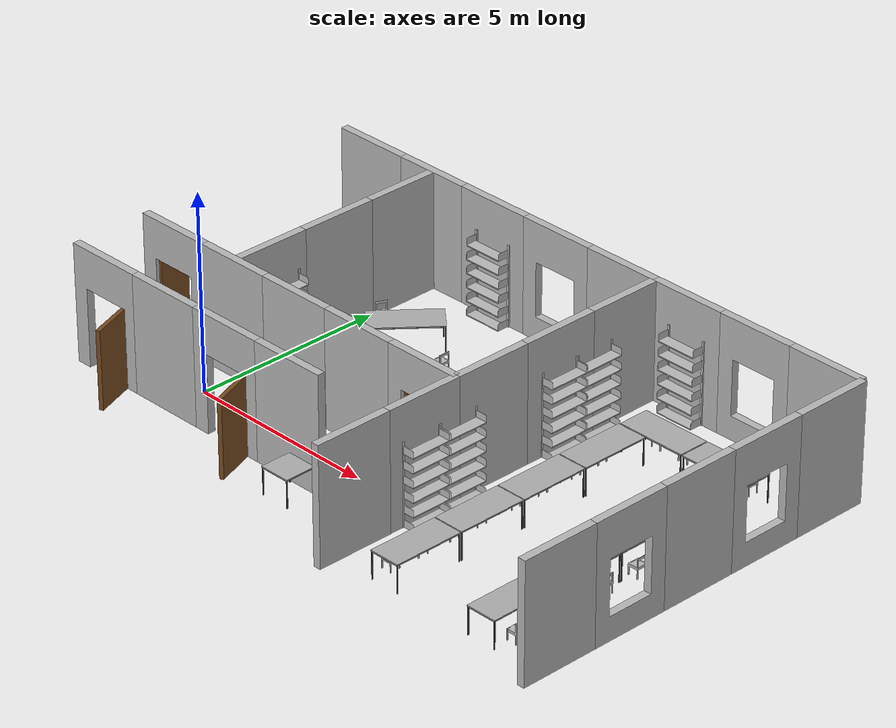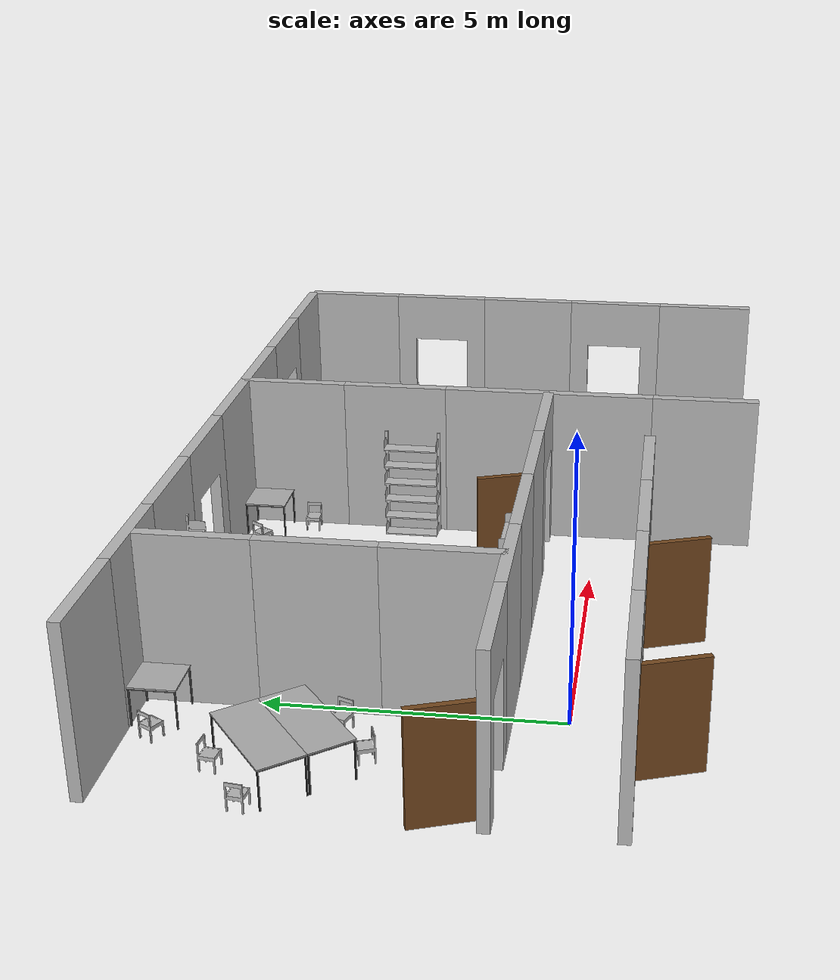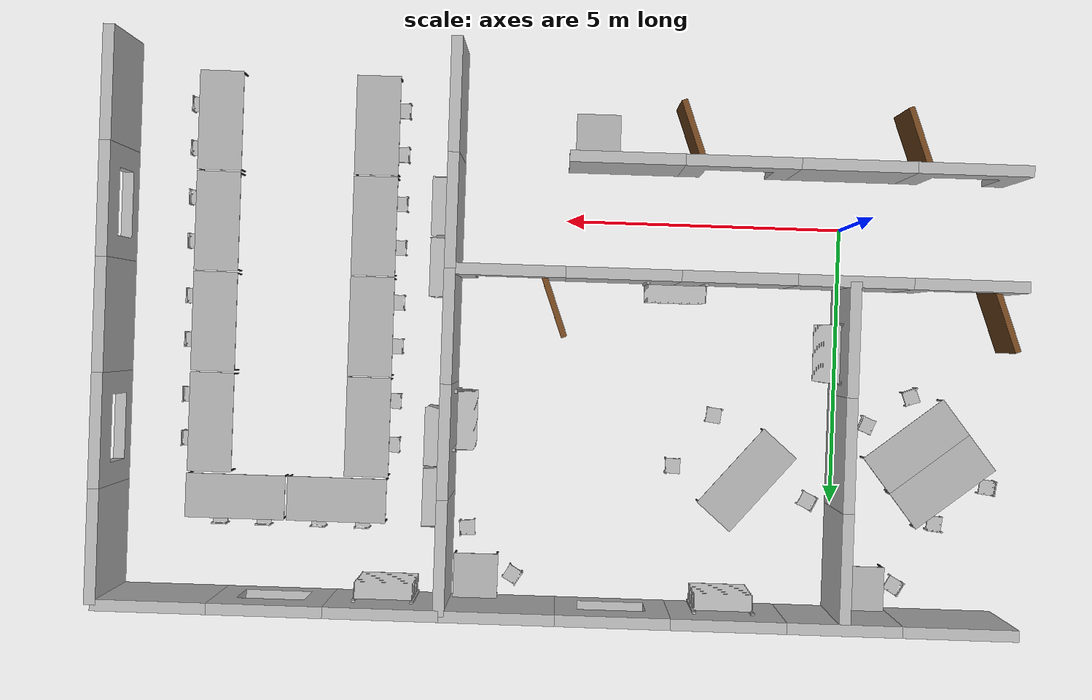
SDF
<sdf version="1.6">
 <world name="office_sim">
  <model name="Shelves.028">
   <static>1</static>
   <link name="Shelves">
    <collision name="collision">
     <geometry><mesh><uri>model://Shelves/Shelves.dae</uri></mesh></geometry>
    </collision>
    <visual name="vis">
     <cast_shadows>0</cast_shadows>
     <geometry><mesh><uri>model://Shelves/Shelves.dae</uri></mesh></geometry>
    </visual>
   </link>
   <pose>8.03156 6.86493 0 0 -0 0</pose>
  </model>
  <model name="Shelves.027">
   <static>1</static>
   <link name="Shelves">
    <collision name="collision">
     <geometry><mesh><uri>model://Shelves/Shelves.dae</uri></mesh></geometry>
    </collision>
    <visual name="vis">
     <cast_shadows>0</cast_shadows>
     <geometry><mesh><uri>model://Shelves/Shelves.dae</uri></mesh></geometry>
    </visual>
   </link>
   <pose>2.03156 6.86493 0 0 -0 0</pose>
  </model>
  <model name="Shelves.026">
   <static>1</static>
   <link name="Shelves">
    <collision name="collision">
     <geometry><mesh><uri>model://Shelves/Shelves.dae</uri></mesh></geometry>
    </collision>
    <visual name="vis">
     <cast_shadows>0</cast_shadows>
     <geometry><mesh><uri>model://Shelves/Shelves.dae</uri></mesh></geometry>
    </visual>
   </link>
   <pose>3.03156 1.14421 0 0 -0 -3.14159</pose>
  </model>
  <model name="Shelves.015">
   <static>1</static>
   <link name="Shelves">
    <collision name="collision">
     <geometry><mesh><uri>model://Shelves/Shelves.dae</uri></mesh></geometry>
    </collision>
    <visual name="vis">
     <cast_shadows>0</cast_shadows>
     <geometry><mesh><uri>model://Shelves/Shelves.dae</uri></mesh></geometry>
    </visual>
   </link>
   <pose>6.83156 3.65816 0 0 -0 -1.5708</pose>
  </model>
  <model name="Shelves.005">
   <static>1</static>
   <link name="Shelves">
    <collision name="collision">
     <geometry><mesh><uri>model://Shelves/Shelves.dae</uri></mesh></geometry>
    </collision>
    <visual name="vis">
     <cast_shadows>0</cast_shadows>
     <geometry><mesh><uri>model://Shelves/Shelves.dae</uri></mesh></geometry>
    </visual>
   </link>
   <pose>0.103355 2.25816 0 0 -0 1.5708</pose>
  </model>
  <model name="Shelves.004">
   <static>1</static>
   <link name="Shelves">
    <collision name="collision">
     <geometry><mesh><uri>model://Shelves/Shelves.dae</uri></mesh></geometry>
    </collision>
    <visual name="vis">
     <cast_shadows>0</cast_shadows>
     <geometry><mesh><uri>model://Shelves/Shelves.dae</uri></mesh></geometry>
    </visual>
   </link>
   <pose>7.10335 5.0286 0 0 -0 1.5708</pose>
  </model>
  <model name="Shelves.003">
   <static>1</static>
   <link name="Shelves">
    <collision name="collision">
     <geometry><mesh><uri>model://Shelves/Shelves.dae</uri></mesh></geometry>
    </collision>
    <visual name="vis">
     <cast_shadows>0</cast_shadows>
     <geometry><mesh><uri>model://Shelves/Shelves.dae</uri></mesh></geometry>
    </visual>
   </link>
   <pose>7.10335 3.96468 0 0 -0 1.5708</pose>
  </model>
  <model name="Shelves.002">
   <static>1</static>
   <link name="Shelves">
    <collision name="collision">
     <geometry><mesh><uri>model://Shelves/Shelves.dae</uri></mesh></geometry>
    </collision>
    <visual name="vis">
     <cast_shadows>0</cast_shadows>
     <geometry><mesh><uri>model://Shelves/Shelves.dae</uri></mesh></geometry>
    </visual>
   </link>
   <pose>7.10335 0.964682 0 0 -0 1.5708</pose>
  </model>
  <model name="Shelves.001">
   <static>1</static>
   <link name="Shelves">
    <collision name="collision">
     <geometry><mesh><uri>model://Shelves/Shelves.dae</uri></mesh></geometry>
    </collision>
    <visual name="vis">
     <cast_shadows>0</cast_shadows>
     <geometry><mesh><uri>model://Shelves/Shelves.dae</uri></mesh></geometry>
    </visual>
   </link>
   <pose>7.10335 -0.11143 0 0 -0 1.5708</pose>
  </model>
  <model name="DoorOpen.011">
   <static>1</static>
   <link name="DoorOpen">
    <collision name="collision">
     <geometry><mesh><uri>model://DoorOpen/DoorOpen.dae</uri></mesh></geometry>
    </collision>
    <visual name="vis">
     <cast_shadows>0</cast_shadows>
     <geometry><mesh><uri>model://DoorOpen/DoorOpen.dae</uri></mesh></geometry>
    </visual>
   </link>
   <pose>-2 1 0 0 -0 0</pose>
  </model>
  <model name="DoorOpen.010">
   <static>1</static>
   <link name="DoorOpen">
    <collision name="collision">
     <geometry><mesh><uri>model://DoorOpen/DoorOpen.dae</uri></mesh></geometry>
    </collision>
    <visual name="vis">
     <cast_shadows>0</cast_shadows>
     <geometry><mesh><uri>model://DoorOpen/DoorOpen.dae</uri></mesh></geometry>
    </visual>
   </link>
   <pose>6 1 0 0 -0 0</pose>
  </model>
  <model name="DoorOpen.009">
   <static>1</static>
   <link name="DoorOpen">
    <collision name="collision">
     <geometry><mesh><uri>model://DoorOpen/DoorOpen.dae</uri></mesh></geometry>
    </collision>
    <visual name="vis">
     <cast_shadows>0</cast_shadows>
     <geometry><mesh><uri>model://DoorOpen/DoorOpen.dae</uri></mesh></geometry>
    </visual>
   </link>
   <pose>-2 -1 0 0 -0 3.14159</pose>
  </model>
  <model name="DoorOpen.006">
   <static>1</static>
   <link name="DoorOpen">
    <collision name="collision">
     <geometry><mesh><uri>model://DoorOpen/DoorOpen.dae</uri></mesh></geometry>
    </collision>
    <visual name="vis">
     <cast_shadows>0</cast_shadows>
     <geometry><mesh><uri>model://DoorOpen/DoorOpen.dae</uri></mesh></geometry>
    </visual>
   </link>
   <pose>2 -1 0 0 -0 3.14159</pose>
  </model>
  <model name="chair.077">
   <static>1</static>
   <link name="Chair">
    <collision name="collision"><geometry><mesh><uri>model://Chair/Chair.dae</uri></mesh></geometry></collision>
    <visual name="vis">
     <cast_shadows>0</cast_shadows>
     <geometry><mesh><uri>model://Chair/Chair.dae</uri></mesh></geometry>
    </visual>
   </link>
   <pose>-1.17679 6.46121 0 0 -0 1.05807</pose>
  </model>
  <model name="chair.065">
   <static>1</static>
   <link name="Chair">
    <collision name="collision"><geometry><mesh><uri>model://Chair/Chair.dae</uri></mesh></geometry></collision>
    <visual name="vis">
     <cast_shadows>0</cast_shadows>
     <geometry><mesh><uri>model://Chair/Chair.dae</uri></mesh></geometry>
    </visual>
   </link>
   <pose>-2.8286 4.61296 0 0 -0 1.44364</pose>
  </model>
  <model name="chair.064">
   <static>1</static>
   <link name="Chair">
    <collision name="collision"><geometry><mesh><uri>model://Chair/Chair.dae</uri></mesh></geometry></collision>
    <visual name="vis">
     <cast_shadows>0</cast_shadows>
     <geometry><mesh><uri>model://Chair/Chair.dae</uri></mesh></geometry>
    </visual>
   </link>
   <pose>-1.89432 5.30636 0 0 0 -0.120868</pose>
  </model>
  <model name="chair.063">
   <static>1</static>
   <link name="Chair">
    <collision name="collision"><geometry><mesh><uri>model://Chair/Chair.dae</uri></mesh></geometry></collision>
    <visual name="vis">
     <cast_shadows>0</cast_shadows>
     <geometry><mesh><uri>model://Chair/Chair.dae</uri></mesh></geometry>
    </visual>
   </link>
   <pose>-1.39274 3.00957 0 0 0 -2.79306</pose>
  </model>
  <model name="chair.062">
   <static>1</static>
   <link name="Chair">
    <collision name="collision"><geometry><mesh><uri>model://Chair/Chair.dae</uri></mesh></geometry></collision>
    <visual name="vis">
     <cast_shadows>0</cast_shadows>
     <geometry><mesh><uri>model://Chair/Chair.dae</uri></mesh></geometry>
    </visual>
   </link>
   <pose>-0.597138 3.55061 0 0 0 -1.94892</pose>
  </model>
  <model name="chair.061">
   <static>1</static>
   <link name="Chair">
    <collision name="collision"><geometry><mesh><uri>model://Chair/Chair.dae</uri></mesh></geometry></collision>
    <visual name="vis">
     <cast_shadows>0</cast_shadows>
     <geometry><mesh><uri>model://Chair/Chair.dae</uri></mesh></geometry>
    </visual>
   </link>
   <pose>5.78957 6.49669 0 0 -0 1.02957</pose>
  </model>
  <model name="chair.060">
   <static>1</static>
   <link name="Chair">
    <collision name="collision"><geometry><mesh><uri>model://Chair/Chair.dae</uri></mesh></geometry></collision>
    <visual name="vis">
     <cast_shadows>0</cast_shadows>
     <geometry><mesh><uri>model://Chair/Chair.dae</uri></mesh></geometry>
    </visual>
   </link>
   <pose>6.63843 5.66354 0 0 0 -1.49217</pose>
  </model>
  <model name="chair.059">
   <static>1</static>
   <link name="Chair">
    <collision name="collision"><geometry><mesh><uri>model://Chair/Chair.dae</uri></mesh></geometry></collision>
    <visual name="vis">
     <cast_shadows>0</cast_shadows>
     <geometry><mesh><uri>model://Chair/Chair.dae</uri></mesh></geometry>
    </visual>
   </link>
   <pose>2.20546 3.46278 0 0 -0 3.01177</pose>
  </model>
  <model name="chair.058">
   <static>1</static>
   <link name="Chair">
    <collision name="collision"><geometry><mesh><uri>model://Chair/Chair.dae</uri></mesh></geometry></collision>
    <visual name="vis">
     <cast_shadows>0</cast_shadows>
     <geometry><mesh><uri>model://Chair/Chair.dae</uri></mesh></geometry>
    </visual>
   </link>
   <pose>2.92595 4.41251 0 0 0 -1.59587</pose>
  </model>
  <model name="chair.057">
   <static>1</static>
   <link name="Chair">
    <collision name="collision"><geometry><mesh><uri>model://Chair/Chair.dae</uri></mesh></geometry></collision>
    <visual name="vis">
     <cast_shadows>0</cast_shadows>
     <geometry><mesh><uri>model://Chair/Chair.dae</uri></mesh></geometry>
    </visual>
   </link>
   <pose>0.447908 4.96925 0 0 -0 1.10939</pose>
  </model>
  <model name="chair.036">
   <static>1</static>
   <link name="Chair">
    <collision name="collision"><geometry><mesh><uri>model://Chair/Chair.dae</uri></mesh></geometry></collision>
    <visual name="vis">
     <cast_shadows>0</cast_shadows>
     <geometry><mesh><uri>model://Chair/Chair.dae</uri></mesh></geometry>
    </visual>
   </link>
   <pose>8.06125 -1.10181 0 0 -0 1.5708</pose>
  </model>
  <model name="chair.035">
   <static>1</static>
   <link name="Chair">
    <collision name="collision"><geometry><mesh><uri>model://Chair/Chair.dae</uri></mesh></geometry></collision>
    <visual name="vis">
     <cast_shadows>0</cast_shadows>
     <geometry><mesh><uri>model://Chair/Chair.dae</uri></mesh></geometry>
    </visual>
   </link>
   <pose>8.06125 -1.90181 0 0 -0 1.5708</pose>
  </model>
  <model name="chair.034">
   <static>1</static>
   <link name="Chair">
    <collision name="collision"><geometry><mesh><uri>model://Chair/Chair.dae</uri></mesh></geometry></collision>
    <visual name="vis">
     <cast_shadows>0</cast_shadows>
     <geometry><mesh><uri>model://Chair/Chair.dae</uri></mesh></geometry>
    </visual>
   </link>
   <pose>11.7612 -1.10181 0 0 0 -1.5708</pose>
  </model>
  <model name="chair.033">
   <static>1</static>
   <link name="Chair">
    <collision name="collision"><geometry><mesh><uri>model://Chair/Chair.dae</uri></mesh></geometry></collision>
    <visual name="vis">
     <cast_shadows>0</cast_shadows>
     <geometry><mesh><uri>model://Chair/Chair.dae</uri></mesh></geometry>
    </visual>
   </link>
   <pose>11.7612 -1.90181 0 0 0 -1.5708</pose>
  </model>
  <model name="chair.032">
   <static>1</static>
   <link name="Chair">
    <collision name="collision"><geometry><mesh><uri>model://Chair/Chair.dae</uri></mesh></geometry></collision>
    <visual name="vis">
     <cast_shadows>0</cast_shadows>
     <geometry><mesh><uri>model://Chair/Chair.dae</uri></mesh></geometry>
    </visual>
   </link>
   <pose>11.7612 -0.20181 0 0 0 -1.5708</pose>
  </model>
  <model name="chair.031">
   <static>1</static>
   <link name="Chair">
    <collision name="collision"><geometry><mesh><uri>model://Chair/Chair.dae</uri></mesh></geometry></collision>
    <visual name="vis">
     <cast_shadows>0</cast_shadows>
     <geometry><mesh><uri>model://Chair/Chair.dae</uri></mesh></geometry>
    </visual>
   </link>
   <pose>11.7612 0.59819 0 0 0 -1.5708</pose>
  </model>
  <model name="chair.030">
   <static>1</static>
   <link name="Chair">
    <collision name="collision"><geometry><mesh><uri>model://Chair/Chair.dae</uri></mesh></geometry></collision>
    <visual name="vis">
     <cast_shadows>0</cast_shadows>
     <geometry><mesh><uri>model://Chair/Chair.dae</uri></mesh></geometry>
    </visual>
   </link>
   <pose>11.7612 2.39819 0 0 0 -1.5708</pose>
  </model>
  <model name="chair.029">
   <static>1</static>
   <link name="Chair">
    <collision name="collision"><geometry><mesh><uri>model://Chair/Chair.dae</uri></mesh></geometry></collision>
    <visual name="vis">
     <cast_shadows>0</cast_shadows>
     <geometry><mesh><uri>model://Chair/Chair.dae</uri></mesh></geometry>
    </visual>
   </link>
   <pose>11.7612 1.59819 0 0 0 -1.5708</pose>
  </model>
  <model name="chair.028">
   <static>1</static>
   <link name="Chair">
    <collision name="collision"><geometry><mesh><uri>model://Chair/Chair.dae</uri></mesh></geometry></collision>
    <visual name="vis">
     <cast_shadows>0</cast_shadows>
     <geometry><mesh><uri>model://Chair/Chair.dae</uri></mesh></geometry>
    </visual>
   </link>
   <pose>11.7612 3.39819 0 0 0 -1.5708</pose>
  </model>
  <model name="chair.027">
   <static>1</static>
   <link name="Chair">
    <collision name="collision"><geometry><mesh><uri>model://Chair/Chair.dae</uri></mesh></geometry></collision>
    <visual name="vis">
     <cast_shadows>0</cast_shadows>
     <geometry><mesh><uri>model://Chair/Chair.dae</uri></mesh></geometry>
    </visual>
   </link>
   <pose>11.7612 4.19819 0 0 0 -1.5708</pose>
  </model>
  <model name="chair.026">
   <static>1</static>
   <link name="Chair">
    <collision name="collision"><geometry><mesh><uri>model://Chair/Chair.dae</uri></mesh></geometry></collision>
    <visual name="vis">
     <cast_shadows>0</cast_shadows>
     <geometry><mesh><uri>model://Chair/Chair.dae</uri></mesh></geometry>
    </visual>
   </link>
   <pose>8.06125 -0.20181 0 0 -0 1.5708</pose>
  </model>
  <model name="chair.025">
   <static>1</static>
   <link name="Chair">
    <collision name="collision"><geometry><mesh><uri>model://Chair/Chair.dae</uri></mesh></geometry></collision>
    <visual name="vis">
     <cast_shadows>0</cast_shadows>
     <geometry><mesh><uri>model://Chair/Chair.dae</uri></mesh></geometry>
    </visual>
   </link>
   <pose>8.06125 0.59819 0 0 -0 1.5708</pose>
  </model>
  <model name="chair.024">
   <static>1</static>
   <link name="Chair">
    <collision name="collision"><geometry><mesh><uri>model://Chair/Chair.dae</uri></mesh></geometry></collision>
    <visual name="vis">
     <cast_shadows>0</cast_shadows>
     <geometry><mesh><uri>model://Chair/Chair.dae</uri></mesh></geometry>
    </visual>
   </link>
   <pose>8.06125 2.39819 0 0 -0 1.5708</pose>
  </model>
  <model name="chair.023">
   <static>1</static>
   <link name="Chair">
    <collision name="collision"><geometry><mesh><uri>model://Chair/Chair.dae</uri></mesh></geometry></collision>
    <visual name="vis">
     <cast_shadows>0</cast_shadows>
     <geometry><mesh><uri>model://Chair/Chair.dae</uri></mesh></geometry>
    </visual>
   </link>
   <pose>8.06125 1.59819 0 0 -0 1.5708</pose>
  </model>
  <model name="chair.022">
   <static>1</static>
   <link name="Chair">
    <collision name="collision"><geometry><mesh><uri>model://Chair/Chair.dae</uri></mesh></geometry></collision>
    <visual name="vis">
     <cast_shadows>0</cast_shadows>
     <geometry><mesh><uri>model://Chair/Chair.dae</uri></mesh></geometry>
    </visual>
   </link>
   <pose>8.06125 3.39819 0 0 -0 1.5708</pose>
  </model>
  <model name="chair.021">
   <static>1</static>
   <link name="Chair">
    <collision name="collision"><geometry><mesh><uri>model://Chair/Chair.dae</uri></mesh></geometry></collision>
    <visual name="vis">
     <cast_shadows>0</cast_shadows>
     <geometry><mesh><uri>model://Chair/Chair.dae</uri></mesh></geometry>
    </visual>
   </link>
   <pose>8.06125 4.19819 0 0 -0 1.5708</pose>
  </model>
  <model name="chair.020">
   <static>1</static>
   <link name="Chair">
    <collision name="collision"><geometry><mesh><uri>model://Chair/Chair.dae</uri></mesh></geometry></collision>
    <visual name="vis">
     <cast_shadows>0</cast_shadows>
     <geometry><mesh><uri>model://Chair/Chair.dae</uri></mesh></geometry>
    </visual>
   </link>
   <pose>11.1612 5.59819 0 0 -0 0</pose>
  </model>
  <model name="chair.019">
   <static>1</static>
   <link name="Chair">
    <collision name="collision"><geometry><mesh><uri>model://Chair/Chair.dae</uri></mesh></geometry></collision>
    <visual name="vis">
     <cast_shadows>0</cast_shadows>
     <geometry><mesh><uri>model://Chair/Chair.dae</uri></mesh></geometry>
    </visual>
   </link>
   <pose>10.3612 5.59819 0 0 -0 0</pose>
  </model>
  <model name="chair.018">
   <static>1</static>
   <link name="Chair">
    <collision name="collision"><geometry><mesh><uri>model://Chair/Chair.dae</uri></mesh></geometry></collision>
    <visual name="vis">
     <cast_shadows>0</cast_shadows>
     <geometry><mesh><uri>model://Chair/Chair.dae</uri></mesh></geometry>
    </visual>
   </link>
   <pose>8.56125 5.59819 0 0 -0 0</pose>
  </model>
  <model name="chair.017">
   <static>1</static>
   <link name="Chair">
    <collision name="collision"><geometry><mesh><uri>model://Chair/Chair.dae</uri></mesh></geometry></collision>
    <visual name="vis">
     <cast_shadows>0</cast_shadows>
     <geometry><mesh><uri>model://Chair/Chair.dae</uri></mesh></geometry>
    </visual>
   </link>
   <pose>9.36125 5.59819 0 0 -0 0</pose>
  </model>
  <model name="SmallTable.003">
   <static>1</static>
   <link name="SmallTable">
    <collision name="collision">
     <geometry><mesh><uri>model://SmallTable/SmallTable.dae</uri></mesh></geometry>
    </collision>
    <visual name="vis">
     <cast_shadows>0</cast_shadows>
     <geometry><mesh><uri>model://SmallTable/SmallTable.dae</uri></mesh></geometry>
    </visual>
   </link>
   <pose>-0.550202 6.49603 0 0 -0 0</pose>
  </model>
  <model name="SmallTable.002">
   <static>1</static>
   <link name="SmallTable">
    <collision name="collision">
     <geometry><mesh><uri>model://SmallTable/SmallTable.dae</uri></mesh></geometry>
    </collision>
    <visual name="vis">
     <cast_shadows>0</cast_shadows>
     <geometry><mesh><uri>model://SmallTable/SmallTable.dae</uri></mesh></geometry>
    </visual>
   </link>
   <pose>6.4498 6.49603 0 0 -0 0</pose>
  </model>
  <model name="SmallTable.001">
   <static>1</static>
   <link name="SmallTable">
    <collision name="collision">
     <geometry><mesh><uri>model://SmallTable/SmallTable.dae</uri></mesh></geometry>
    </collision>
    <visual name="vis">
     <cast_shadows>0</cast_shadows>
     <geometry><mesh><uri>model://SmallTable/SmallTable.dae</uri></mesh></geometry>
    </visual>
   </link>
   <pose>4.48481 -1.52576 0 0 -0 0</pose>
  </model>
  <model name="BigTable.031">
   <static>1</static>
   <link name="BigTable">
    <collision name="collision">
     <geometry><mesh><uri>model://BigTable/BigTable.dae</uri></mesh></geometry>
    </collision>
    <visual name="vis">
     <cast_shadows>0</cast_shadows>
     <geometry><mesh><uri>model://BigTable/BigTable.dae</uri></mesh></geometry>
    </visual>
   </link>
   <pose>1.59204 4.60743 0 0 0 -2.27861</pose>
  </model>
  <model name="BigTable.026">
   <static>1</static>
   <link name="BigTable">
    <collision name="collision">
     <geometry><mesh><uri>model://BigTable/BigTable.dae</uri></mesh></geometry>
    </collision>
    <visual name="vis">
     <cast_shadows>0</cast_shadows>
     <geometry><mesh><uri>model://BigTable/BigTable.dae</uri></mesh></geometry>
    </visual>
   </link>
   <pose>-1.46069 3.89302 0 0 0 -2.47516</pose>
  </model>
  <model name="BigTable.025">
   <static>1</static>
   <link name="BigTable">
    <collision name="collision">
     <geometry><mesh><uri>model://BigTable/BigTable.dae</uri></mesh></geometry>
    </collision>
    <visual name="vis">
     <cast_shadows>0</cast_shadows>
     <geometry><mesh><uri>model://BigTable/BigTable.dae</uri></mesh></geometry>
    </visual>
   </link>
   <pose>-1.95524 4.52184 0 0 0 -2.47516</pose>
  </model>
  <model name="BigTable.014">
   <static>1</static>
   <link name="BigTable">
    <collision name="collision">
     <geometry><mesh><uri>model://BigTable/BigTable.dae</uri></mesh></geometry>
    </collision>
    <visual name="vis">
     <cast_shadows>0</cast_shadows>
     <geometry><mesh><uri>model://BigTable/BigTable.dae</uri></mesh></geometry>
    </visual>
   </link>
   <pose>10.8495 5.2111 0 0 0 -3.14159</pose>
  </model>
  <model name="BigTable.013">
   <static>1</static>
   <link name="BigTable">
    <collision name="collision">
     <geometry><mesh><uri>model://BigTable/BigTable.dae</uri></mesh></geometry>
    </collision>
    <visual name="vis">
     <cast_shadows>0</cast_shadows>
     <geometry><mesh><uri>model://BigTable/BigTable.dae</uri></mesh></geometry>
    </visual>
   </link>
   <pose>9.01377 5.2111 0 0 0 -3.14159</pose>
  </model>
  <model name="BigTable.012">
   <static>1</static>
   <link name="BigTable">
    <collision name="collision">
     <geometry><mesh><uri>model://BigTable/BigTable.dae</uri></mesh></geometry>
    </collision>
    <visual name="vis">
     <cast_shadows>0</cast_shadows>
     <geometry><mesh><uri>model://BigTable/BigTable.dae</uri></mesh></geometry>
    </visual>
   </link>
   <pose>8.49204 -1.59257 0 0 0 -1.5708</pose>
  </model>
  <model name="BigTable.011">
   <static>1</static>
   <link name="BigTable">
    <collision name="collision">
     <geometry><mesh><uri>model://BigTable/BigTable.dae</uri></mesh></geometry>
    </collision>
    <visual name="vis">
     <cast_shadows>0</cast_shadows>
     <geometry><mesh><uri>model://BigTable/BigTable.dae</uri></mesh></geometry>
    </visual>
   </link>
   <pose>8.49204 0.232029 0 0 0 -1.5708</pose>
  </model>
  <model name="BigTable.010">
   <static>1</static>
   <link name="BigTable">
    <collision name="collision">
     <geometry><mesh><uri>model://BigTable/BigTable.dae</uri></mesh></geometry>
    </collision>
    <visual name="vis">
     <cast_shadows>0</cast_shadows>
     <geometry><mesh><uri>model://BigTable/BigTable.dae</uri></mesh></geometry>
    </visual>
   </link>
   <pose>8.49204 3.87779 0 0 0 -1.5708</pose>
  </model>
  <model name="BigTable.009">
   <static>1</static>
   <link name="BigTable">
    <collision name="collision">
     <geometry><mesh><uri>model://BigTable/BigTable.dae</uri></mesh></geometry>
    </collision>
    <visual name="vis">
     <cast_shadows>0</cast_shadows>
     <geometry><mesh><uri>model://BigTable/BigTable.dae</uri></mesh></geometry>
    </visual>
   </link>
   <pose>8.49204 2.0532 0 0 0 -1.5708</pose>
  </model>
  <model name="BigTable.008">
   <static>1</static>
   <link name="BigTable">
    <collision name="collision">
     <geometry><mesh><uri>model://BigTable/BigTable.dae</uri></mesh></geometry>
    </collision>
    <visual name="vis">
     <cast_shadows>0</cast_shadows>
     <geometry><mesh><uri>model://BigTable/BigTable.dae</uri></mesh></geometry>
    </visual>
   </link>
   <pose>11.3375 2.0532 0 0 0 -1.5708</pose>
  </model>
  <model name="BigTable.007">
   <static>1</static>
   <link name="BigTable">
    <collision name="collision">
     <geometry><mesh><uri>model://BigTable/BigTable.dae</uri></mesh></geometry>
    </collision>
    <visual name="vis">
     <cast_shadows>0</cast_shadows>
     <geometry><mesh><uri>model://BigTable/BigTable.dae</uri></mesh></geometry>
    </visual>
   </link>
   <pose>11.3375 3.87779 0 0 0 -1.5708</pose>
  </model>
  <model name="BigTable.006">
   <static>1</static>
   <link name="BigTable">
    <collision name="collision">
     <geometry><mesh><uri>model://BigTable/BigTable.dae</uri></mesh></geometry>
    </collision>
    <visual name="vis">
     <cast_shadows>0</cast_shadows>
     <geometry><mesh><uri>model://BigTable/BigTable.dae</uri></mesh></geometry>
    </visual>
   </link>
   <pose>11.3375 0.232029 0 0 0 -1.5708</pose>
  </model>
  <model name="BigTable.005">
   <static>1</static>
   <link name="BigTable">
    <collision name="collision">
     <geometry><mesh><uri>model://BigTable/BigTable.dae</uri></mesh></geometry>
    </collision>
    <visual name="vis">
     <cast_shadows>0</cast_shadows>
     <geometry><mesh><uri>model://BigTable/BigTable.dae</uri></mesh></geometry>
    </visual>
   </link>
   <pose>11.3375 -1.59257 0 0 0 -1.5708</pose>
  </model>
  <model name="WallTile.084">
   <static>1</static>
   <link name="WallTile">
    <collision name="collision">
     <geometry><mesh><uri>model://WallTile/WallTile.dae</uri></mesh></geometry>
    </collision>
    <visual name="vis">
     <cast_shadows>0</cast_shadows>
     <geometry><mesh><uri>model://WallTile/WallTile.dae</uri></mesh></geometry>
     <material>
      <script><uri>file://Media/materials/scripts/iai-office.material</uri><name>IAI/OfficeWall</name></script>
     </material>
    </visual>
   </link>
   <pose>2 1 0 0 -0 3.14159</pose>
  </model>
  <model name="DoorTile.006">
   <static>1</static>
   <link name="DoorTile">
    <collision name="collision">
     <geometry><mesh><uri>model://DoorTile/DoorTile.dae</uri></mesh></geometry>
    </collision>
    <visual name="vis">
     <cast_shadows>0</cast_shadows>
     <geometry><mesh><uri>model://DoorTile/DoorTile.dae</uri></mesh></geometry>
     <material>
      <script><uri>file://Media/materials/scripts/iai-office.material</uri><name>IAI/OfficeWall</name></script>
     </material>
    </visual>
   </link>
   <pose>-2 -1 0 0 -0 0</pose>
  </model>
  <model name="WallTile.062">
   <static>1</static>
   <link name="WallTile">
    <collision name="collision">
     <geometry><mesh><uri>model://WallTile/WallTile.dae</uri></mesh></geometry>
    </collision>
    <visual name="vis">
     <cast_shadows>0</cast_shadows>
     <geometry><mesh><uri>model://WallTile/WallTile.dae</uri></mesh></geometry>
     <material>
      <script><uri>file://Media/materials/scripts/iai-office.material</uri><name>IAI/OfficeWall</name></script>
     </material>
    </visual>
   </link>
   <pose>0 -1 0 0 -0 0</pose>
  </model>
  <model name="WallTile.061">
   <static>1</static>
   <link name="WallTile">
    <collision name="collision">
     <geometry><mesh><uri>model://WallTile/WallTile.dae</uri></mesh></geometry>
    </collision>
    <visual name="vis">
     <cast_shadows>0</cast_shadows>
     <geometry><mesh><uri>model://WallTile/WallTile.dae</uri></mesh></geometry>
     <material>
      <script><uri>file://Media/materials/scripts/iai-office.material</uri><name>IAI/OfficeWall</name></script>
     </material>
    </visual>
   </link>
   <pose>4 -1 0 0 -0 3.14159</pose>
  </model>
  <model name="DoorTile.005">
   <static>1</static>
   <link name="DoorTile">
    <collision name="collision">
     <geometry><mesh><uri>model://DoorTile/DoorTile.dae</uri></mesh></geometry>
    </collision>
    <visual name="vis">
     <cast_shadows>0</cast_shadows>
     <geometry><mesh><uri>model://DoorTile/DoorTile.dae</uri></mesh></geometry>
     <material>
      <script><uri>file://Media/materials/scripts/iai-office.material</uri><name>IAI/OfficeWall</name></script>
     </material>
    </visual>
   </link>
   <pose>2 -1 0 0 -0 0</pose>
  </model>
  <model name="WallTile.020">
   <static>1</static>
   <link name="WallTile">
    <collision name="collision">
     <geometry><mesh><uri>model://WallTile/WallTile.dae</uri></mesh></geometry>
    </collision>
    <visual name="vis">
     <cast_shadows>0</cast_shadows>
     <geometry><mesh><uri>model://WallTile/WallTile.dae</uri></mesh></geometry>
     <material>
      <script><uri>file://Media/materials/scripts/iai-office.material</uri><name>IAI/OfficeWall</name></script>
     </material>
    </visual>
   </link>
   <pose>7 0 0 0 -0 1.5708</pose>
  </model>
  <model name="WallTile.019">
   <static>1</static>
   <link name="WallTile">
    <collision name="collision">
     <geometry><mesh><uri>model://WallTile/WallTile.dae</uri></mesh></geometry>
    </collision>
    <visual name="vis">
     <cast_shadows>0</cast_shadows>
     <geometry><mesh><uri>model://WallTile/WallTile.dae</uri></mesh></geometry>
     <material>
      <script><uri>file://Media/materials/scripts/iai-office.material</uri><name>IAI/OfficeWall</name></script>
     </material>
    </visual>
   </link>
   <pose>7 -2 0 0 -0 1.5708</pose>
  </model>
  <model name="WallTile.018">
   <static>1</static>
   <link name="WallTile">
    <collision name="collision">
     <geometry><mesh><uri>model://WallTile/WallTile.dae</uri></mesh></geometry>
    </collision>
    <visual name="vis">
     <cast_shadows>0</cast_shadows>
     <geometry><mesh><uri>model://WallTile/WallTile.dae</uri></mesh></geometry>
     <material>
      <script><uri>file://Media/materials/scripts/iai-office.material</uri><name>IAI/OfficeWall</name></script>
     </material>
    </visual>
   </link>
   <pose>13 -2 0 0 -0 1.5708</pose>
  </model>
  <model name="WindowTile.007">
   <static>1</static>
   <link name="WindowTile">
    <collision name="collision">
     <geometry><mesh><uri>model://WindowTile/WindowTile.dae</uri></mesh></geometry>
    </collision>
    <visual name="vis">
     <cast_shadows>0</cast_shadows>
     <geometry><mesh><uri>model://WindowTile/WindowTile.dae</uri></mesh></geometry>
     <material>
      <script><uri>file://Media/materials/scripts/iai-office.material</uri><name>IAI/OfficeWall</name></script>
     </material>
    </visual>
   </link>
   <pose>13 0 0 0 0 -1.5708</pose>
  </model>
  <model name="WindowTile.006">
   <static>1</static>
   <link name="WindowTile">
    <collision name="collision">
     <geometry><mesh><uri>model://WindowTile/WindowTile.dae</uri></mesh></geometry>
    </collision>
    <visual name="vis">
     <cast_shadows>0</cast_shadows>
     <geometry><mesh><uri>model://WindowTile/WindowTile.dae</uri></mesh></geometry>
     <material>
      <script><uri>file://Media/materials/scripts/iai-office.material</uri><name>IAI/OfficeWall</name></script>
     </material>
    </visual>
   </link>
   <pose>13 4 0 0 0 -1.5708</pose>
  </model>
  <model name="WallTile.017">
   <static>1</static>
   <link name="WallTile">
    <collision name="collision">
     <geometry><mesh><uri>model://WallTile/WallTile.dae</uri></mesh></geometry>
    </collision>
    <visual name="vis">
     <cast_shadows>0</cast_shadows>
     <geometry><mesh><uri>model://WallTile/WallTile.dae</uri></mesh></geometry>
     <material>
      <script><uri>file://Media/materials/scripts/iai-office.material</uri><name>IAI/OfficeWall</name></script>
     </material>
    </visual>
   </link>
   <pose>13 6 0 0 -0 1.5708</pose>
  </model>
  <model name="WallTile.016">
   <static>1</static>
   <link name="WallTile">
    <collision name="collision">
     <geometry><mesh><uri>model://WallTile/WallTile.dae</uri></mesh></geometry>
    </collision>
    <visual name="vis">
     <cast_shadows>0</cast_shadows>
     <geometry><mesh><uri>model://WallTile/WallTile.dae</uri></mesh></geometry>
     <material>
      <script><uri>file://Media/materials/scripts/iai-office.material</uri><name>IAI/OfficeWall</name></script>
     </material>
    </visual>
   </link>
   <pose>13 2 0 0 -0 1.5708</pose>
  </model>
  <model name="WallTile.015">
   <static>1</static>
   <link name="WallTile">
    <collision name="collision">
     <geometry><mesh><uri>model://WallTile/WallTile.dae</uri></mesh></geometry>
    </collision>
    <visual name="vis">
     <cast_shadows>0</cast_shadows>
     <geometry><mesh><uri>model://WallTile/WallTile.dae</uri></mesh></geometry>
     <material>
      <script><uri>file://Media/materials/scripts/iai-office.material</uri><name>IAI/OfficeWall</name></script>
     </material>
    </visual>
   </link>
   <pose>12 7 0 0 -0 3.14159</pose>
  </model>
  <model name="WallTile.014">
   <static>1</static>
   <link name="WallTile">
    <collision name="collision">
     <geometry><mesh><uri>model://WallTile/WallTile.dae</uri></mesh></geometry>
    </collision>
    <visual name="vis">
     <cast_shadows>0</cast_shadows>
     <geometry><mesh><uri>model://WallTile/WallTile.dae</uri></mesh></geometry>
     <material>
      <script><uri>file://Media/materials/scripts/iai-office.material</uri><name>IAI/OfficeWall</name></script>
     </material>
    </visual>
   </link>
   <pose>8 7 0 0 -0 3.14159</pose>
  </model>
  <model name="WindowTile.005">
   <static>1</static>
   <link name="WindowTile">
    <collision name="collision">
     <geometry><mesh><uri>model://WindowTile/WindowTile.dae</uri></mesh></geometry>
    </collision>
    <visual name="vis">
     <cast_shadows>0</cast_shadows>
     <geometry><mesh><uri>model://WindowTile/WindowTile.dae</uri></mesh></geometry>
     <material>
      <script><uri>file://Media/materials/scripts/iai-office.material</uri><name>IAI/OfficeWall</name></script>
     </material>
    </visual>
   </link>
   <pose>10 7 0 0 -0 0</pose>
  </model>
  <model name="WallTile.013">
   <static>1</static>
   <link name="WallTile">
    <collision name="collision">
     <geometry><mesh><uri>model://WallTile/WallTile.dae</uri></mesh></geometry>
    </collision>
    <visual name="vis">
     <cast_shadows>0</cast_shadows>
     <geometry><mesh><uri>model://WallTile/WallTile.dae</uri></mesh></geometry>
     <material>
      <script><uri>file://Media/materials/scripts/iai-office.material</uri><name>IAI/OfficeWall</name></script>
     </material>
    </visual>
   </link>
   <pose>7 4 0 0 -0 1.5708</pose>
  </model>
  <model name="WallTile.012">
   <static>1</static>
   <link name="WallTile">
    <collision name="collision">
     <geometry><mesh><uri>model://WallTile/WallTile.dae</uri></mesh></geometry>
    </collision>
    <visual name="vis">
     <cast_shadows>0</cast_shadows>
     <geometry><mesh><uri>model://WallTile/WallTile.dae</uri></mesh></geometry>
     <material>
      <script><uri>file://Media/materials/scripts/iai-office.material</uri><name>IAI/OfficeWall</name></script>
     </material>
    </visual>
   </link>
   <pose>-2 7 0 0 -0 3.14159</pose>
  </model>
  <model name="WallTile.011">
   <static>1</static>
   <link name="WallTile">
    <collision name="collision">
     <geometry><mesh><uri>model://WallTile/WallTile.dae</uri></mesh></geometry>
    </collision>
    <visual name="vis">
     <cast_shadows>0</cast_shadows>
     <geometry><mesh><uri>model://WallTile/WallTile.dae</uri></mesh></geometry>
     <material>
      <script><uri>file://Media/materials/scripts/iai-office.material</uri><name>IAI/OfficeWall</name></script>
     </material>
    </visual>
   </link>
   <pose>7 2 0 0 -0 1.5708</pose>
  </model>
  <model name="WallTile.010">
   <static>1</static>
   <link name="WallTile">
    <collision name="collision">
     <geometry><mesh><uri>model://WallTile/WallTile.dae</uri></mesh></geometry>
    </collision>
    <visual name="vis">
     <cast_shadows>0</cast_shadows>
     <geometry><mesh><uri>model://WallTile/WallTile.dae</uri></mesh></geometry>
     <material>
      <script><uri>file://Media/materials/scripts/iai-office.material</uri><name>IAI/OfficeWall</name></script>
     </material>
    </visual>
   </link>
   <pose>7 6 0 0 -0 1.5708</pose>
  </model>
  <model name="WindowTile.004">
   <static>1</static>
   <link name="WindowTile">
    <collision name="collision">
     <geometry><mesh><uri>model://WindowTile/WindowTile.dae</uri></mesh></geometry>
    </collision>
    <visual name="vis">
     <cast_shadows>0</cast_shadows>
     <geometry><mesh><uri>model://WindowTile/WindowTile.dae</uri></mesh></geometry>
     <material>
      <script><uri>file://Media/materials/scripts/iai-office.material</uri><name>IAI/OfficeWall</name></script>
     </material>
    </visual>
   </link>
   <pose>4 7 0 0 -0 0</pose>
  </model>
  <model name="WallTile.009">
   <static>1</static>
   <link name="WallTile">
    <collision name="collision">
     <geometry><mesh><uri>model://WallTile/WallTile.dae</uri></mesh></geometry>
    </collision>
    <visual name="vis">
     <cast_shadows>0</cast_shadows>
     <geometry><mesh><uri>model://WallTile/WallTile.dae</uri></mesh></geometry>
     <material>
      <script><uri>file://Media/materials/scripts/iai-office.material</uri><name>IAI/OfficeWall</name></script>
     </material>
    </visual>
   </link>
   <pose>2 7 0 0 -0 3.14159</pose>
  </model>
  <model name="WallTile.008">
   <static>1</static>
   <link name="WallTile">
    <collision name="collision">
     <geometry><mesh><uri>model://WallTile/WallTile.dae</uri></mesh></geometry>
    </collision>
    <visual name="vis">
     <cast_shadows>0</cast_shadows>
     <geometry><mesh><uri>model://WallTile/WallTile.dae</uri></mesh></geometry>
     <material>
      <script><uri>file://Media/materials/scripts/iai-office.material</uri><name>IAI/OfficeWall</name></script>
     </material>
    </visual>
   </link>
   <pose>6 7 0 0 -0 3.14159</pose>
  </model>
  <model name="DoorTile.002">
   <static>1</static>
   <link name="DoorTile">
    <collision name="collision">
     <geometry><mesh><uri>model://DoorTile/DoorTile.dae</uri></mesh></geometry>
    </collision>
    <visual name="vis">
     <cast_shadows>0</cast_shadows>
     <geometry><mesh><uri>model://DoorTile/DoorTile.dae</uri></mesh></geometry>
     <material>
      <script><uri>file://Media/materials/scripts/iai-office.material</uri><name>IAI/OfficeWall</name></script>
     </material>
    </visual>
   </link>
   <pose>-2 1 0 0 -0 0</pose>
  </model>
  <model name="WallTile.006">
   <static>1</static>
   <link name="WallTile">
    <collision name="collision">
     <geometry><mesh><uri>model://WallTile/WallTile.dae</uri></mesh></geometry>
    </collision>
    <visual name="vis">
     <cast_shadows>0</cast_shadows>
     <geometry><mesh><uri>model://WallTile/WallTile.dae</uri></mesh></geometry>
     <material>
      <script><uri>file://Media/materials/scripts/iai-office.material</uri><name>IAI/OfficeWall</name></script>
     </material>
    </visual>
   </link>
   <pose>4 1 0 0 -0 3.14159</pose>
  </model>
  <model name="WallTile.007">
   <static>1</static>
   <link name="WallTile">
    <collision name="collision">
     <geometry><mesh><uri>model://WallTile/WallTile.dae</uri></mesh></geometry>
    </collision>
    <visual name="vis">
     <cast_shadows>0</cast_shadows>
     <geometry><mesh><uri>model://WallTile/WallTile.dae</uri></mesh></geometry>
     <material>
      <script><uri>file://Media/materials/scripts/iai-office.material</uri><name>IAI/OfficeWall</name></script>
     </material>
    </visual>
   </link>
   <pose>0 7 0 0 -0 3.14159</pose>
  </model>
  <model name="WallTile.004">
   <static>1</static>
   <link name="WallTile">
    <collision name="collision">
     <geometry><mesh><uri>model://WallTile/WallTile.dae</uri></mesh></geometry>
    </collision>
    <visual name="vis">
     <cast_shadows>0</cast_shadows>
     <geometry><mesh><uri>model://WallTile/WallTile.dae</uri></mesh></geometry>
     <material>
      <script><uri>file://Media/materials/scripts/iai-office.material</uri><name>IAI/OfficeWall</name></script>
     </material>
    </visual>
   </link>
   <pose>0 6 0 0 -0 1.5708</pose>
  </model>
  <model name="WallTile.003">
   <static>1</static>
   <link name="WallTile">
    <collision name="collision">
     <geometry><mesh><uri>model://WallTile/WallTile.dae</uri></mesh></geometry>
    </collision>
    <visual name="vis">
     <cast_shadows>0</cast_shadows>
     <geometry><mesh><uri>model://WallTile/WallTile.dae</uri></mesh></geometry>
     <material>
      <script><uri>file://Media/materials/scripts/iai-office.material</uri><name>IAI/OfficeWall</name></script>
     </material>
    </visual>
   </link>
   <pose>0 4 0 0 -0 1.5708</pose>
  </model>
  <model name="WallTile.002">
   <static>1</static>
   <link name="WallTile">
    <collision name="collision">
     <geometry><mesh><uri>model://WallTile/WallTile.dae</uri></mesh></geometry>
    </collision>
    <visual name="vis">
     <cast_shadows>0</cast_shadows>
     <geometry><mesh><uri>model://WallTile/WallTile.dae</uri></mesh></geometry>
     <material>
      <script><uri>file://Media/materials/scripts/iai-office.material</uri><name>IAI/OfficeWall</name></script>
     </material>
    </visual>
   </link>
   <pose>0 2 0 0 -0 1.5708</pose>
  </model>
  <model name="DoorTile.001">
   <static>1</static>
   <link name="DoorTile">
    <collision name="collision">
     <geometry><mesh><uri>model://DoorTile/DoorTile.dae</uri></mesh></geometry>
    </collision>
    <visual name="vis">
     <cast_shadows>0</cast_shadows>
     <geometry><mesh><uri>model://DoorTile/DoorTile.dae</uri></mesh></geometry>
     <material>
      <script><uri>file://Media/materials/scripts/iai-office.material</uri><name>IAI/OfficeWall</name></script>
     </material>
    </visual>
   </link>
   <pose>6 1 0 0 -0 0</pose>
  </model>
  <model name="WallTile.001">
   <static>1</static>
   <link name="WallTile">
    <collision name="collision">
     <geometry><mesh><uri>model://WallTile/WallTile.dae</uri></mesh></geometry>
    </collision>
    <visual name="vis">
     <cast_shadows>0</cast_shadows>
     <geometry><mesh><uri>model://WallTile/WallTile.dae</uri></mesh></geometry>
     <material>
      <script><uri>file://Media/materials/scripts/iai-office.material</uri><name>IAI/OfficeWall</name></script>
     </material>
    </visual>
   </link>
   <pose>0 1 0 0 -0 0</pose>
  </model>
 </world>
</sdf>
